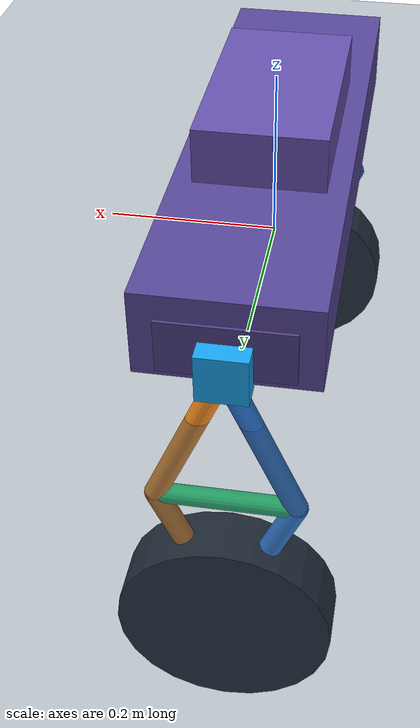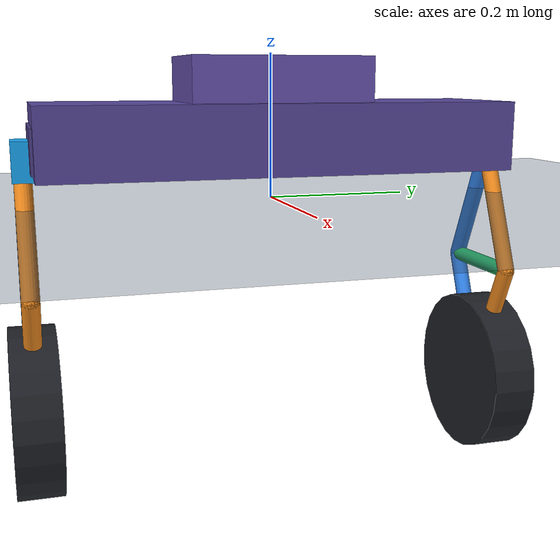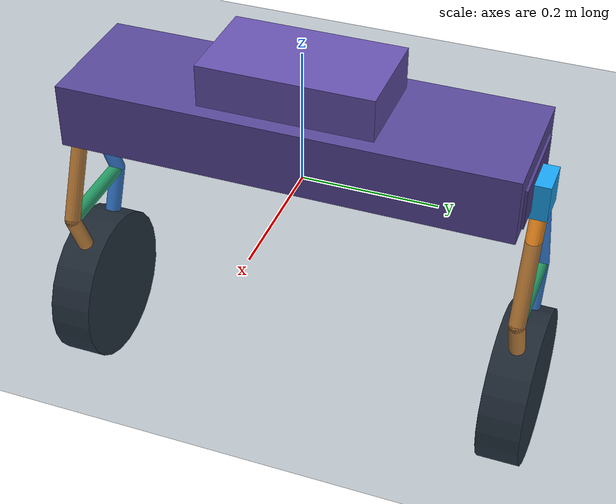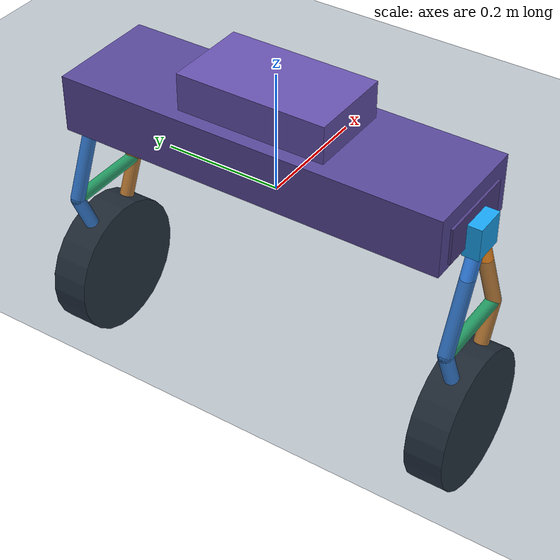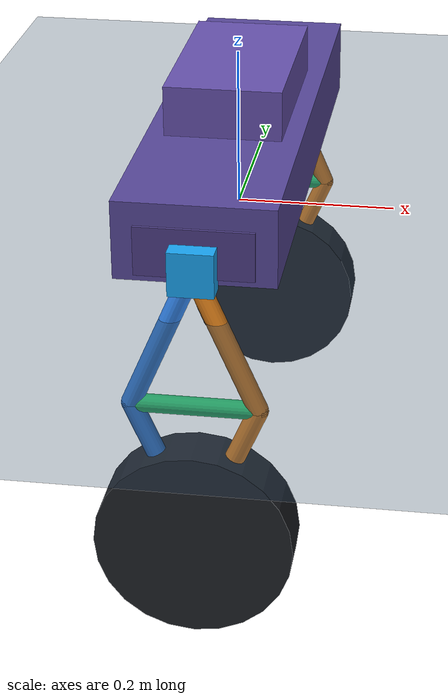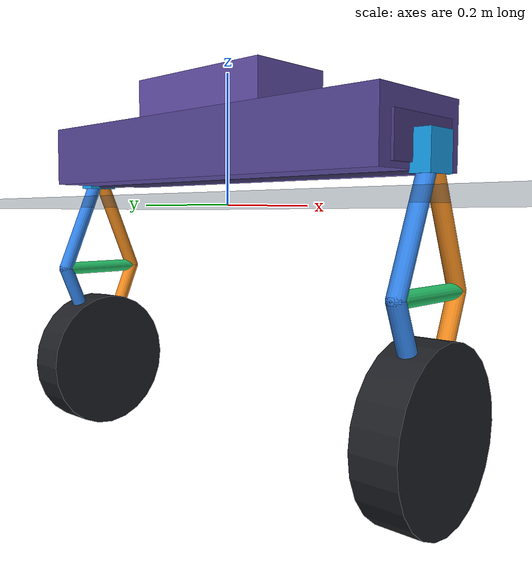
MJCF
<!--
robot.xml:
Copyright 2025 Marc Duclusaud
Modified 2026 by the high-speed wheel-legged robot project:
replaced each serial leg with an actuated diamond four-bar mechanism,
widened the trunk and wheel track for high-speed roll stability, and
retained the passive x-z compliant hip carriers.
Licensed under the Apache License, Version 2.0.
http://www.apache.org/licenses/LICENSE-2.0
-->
<!-- Generated by scripts/generate_high_speed_track.py.
Unitree AddPerlinHeighField demo: size=[2.0, 1.5], 128 px image upsampled 3x. -->
<mujoco model="upkie_unitree_perlin_patch">
  <include file="robot.xml"/>
  <visual>
    <headlight diffuse="0.18 0.18 0.18" ambient="0.10 0.10 0.10"/>
    <rgba haze="0.15 0.25 0.35 1"/>
    <quality shadowsize="4096"/>
    <global offwidth="960" offheight="540" azimuth="145" elevation="-38"/>
  </visual>
  <asset>
    <hfield name="unitree_perlin" file="heightfield.png"
            size="1.000 0.750 0.200000 0.20"/>
    <texture type="skybox" builtin="gradient" rgb1="0.30 0.50 0.70"
             rgb2="0.00 0.00 0.00" width="512" height="3072"/>
    <texture name="grid" type="2d" builtin="checker" mark="edge"
             rgb1="0.20 0.30 0.40" rgb2="0.10 0.20 0.30"
             markrgb="0.80 0.80 0.80" width="512" height="512"/>
    <material name="grid" texture="grid" texrepeat="1 1" texuniform="true"
              reflectance="0.05"/>
    <material name="track" rgba="0.76 0.76 0.74 1" reflectance="0"
              specular="0.18" shininess="0.06"/>
  </asset>
  <worldbody>
    <light pos="1.2 1.0 4.5" dir="-0.25 0.20 -0.95" directional="true"
           diffuse="0.95 0.94 0.90" specular="0.20 0.18 0.16"
           castshadow="true"/>
    <geom name="floor" type="plane" size="0 0 0.05" pos="0 0 0"
          material="grid" friction="1.1 0.02 0.002" condim="3"/>
    <geom name="terrain" type="hfield" hfield="unitree_perlin"
          pos="0.000 0.000 0" material="track" group="3"
          friction="1.1 0.02 0.002" condim="3"/>
  </worldbody>
</mujoco>

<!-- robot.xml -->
<mujoco model="upkie_high_speed_wide_four_bar">
  <compiler angle="radian" autolimits="true"/>
  <option timestep="0.001" integrator="implicitfast" iterations="60"
          ls_iterations="20" noslip_iterations="4"/>

  <default>
    <joint armature="0.005" damping="0.15"/>
    <geom friction="0.8 0.01 0.001" solref="0.004 1"/>
    <default class="link">
      <geom type="capsule" size="0.012" contype="0" conaffinity="0"
            rgba="0.82 0.84 0.88 1"/>
    </default>
    <default class="wheel">
      <geom type="cylinder" size="0.120 0.032" friction="1.1 0.02 0.001"
            rgba="0.12 0.13 0.15 1"/>
    </default>
  </default>

  <worldbody>
    <body name="trunk" pos="0 0 0">
      <freejoint name="trunk_freejoint"/>
      <inertial pos="0.00014 0.00000 0.07200" mass="2.90"
                fullinertia="0.055 0.016 0.052 0 0 0"/>
      <geom name="trunk_collision" type="box" pos="0 0 0.086"
            size="0.095 0.328 0.048" rgba="0.34 0.28 0.60 1"/>
      <geom name="trunk_pod" type="box" pos="0 0 0.148"
            size="0.072 0.126 0.048" rgba="0.40 0.32 0.68 1"
            contype="0" conaffinity="0"/>
      <geom name="left_sponson" type="box" pos="0 0.278 0.076"
            size="0.070 0.054 0.030" rgba="0.30 0.24 0.52 1"
            contype="0" conaffinity="0"/>
      <geom name="right_sponson" type="box" pos="0 -0.278 0.076"
            size="0.070 0.054 0.030" rgba="0.30 0.24 0.52 1"
            contype="0" conaffinity="0"/>
      <geom name="axle_beam" type="capsule" fromto="0 0.336 0.050 0 -0.336 0.050"
            size="0.016" rgba="0.22 0.20 0.38 1"
            contype="0" conaffinity="0"/>
      <site name="imu" pos="-0.04095 0.04000 0.155" size="0.006"/>

      <!-- Left x-z compliant carrier. -->
      <body name="left_hip_carrier" pos="0 0.3411 0.0602">
        <joint name="left_hip_slide_x" type="slide" axis="1 0 0"
               range="-0.020 0.020" stiffness="3000" damping="100"
               springref="0" armature="0.02"/>
        <joint name="left_hip_slide_z" type="slide" axis="0 0 1"
               range="-0.025 0.025" stiffness="7000" damping="180"
               springref="0" armature="0.02"/>
        <inertial pos="0 0 0" mass="0.08" diaginertia="0.00008 0.00008 0.00008"/>
        <geom type="box" size="0.027 0.014 0.027" density="0"
              contype="0" conaffinity="0" rgba="0.10 0.65 0.95 1"/>
        <site name="left_hip_origin" size="0.008" rgba="0.10 0.65 0.95 1"/>

        <body name="left_front_upper" pos="0 0 0">
          <joint name="left_hip" type="hinge" axis="0 1 0" range="-0.65 0.65"/>
          <geom class="link" fromto="0 0 0 0.075 0 -0.174" mass="0.24"
                rgba="0.95 0.55 0.12 1"/>
          <site name="left_front_knee" pos="0.075 0 -0.174" size="0.009"
                rgba="0.95 0.55 0.12 1"/>

          <body name="left_front_lower" pos="0.075 0 -0.174">
            <joint name="left_front_knee_hinge" type="hinge" axis="0 1 0"/>
            <geom class="link" fromto="0 0 0 -0.075 0 -0.174" mass="0.21"
                  rgba="0.95 0.55 0.12 1"/>

            <!-- Telescopic crossbar points from front knee toward rear knee. -->
            <body name="left_strut_outer" quat="0 0 0 1">
              <joint name="left_strut_angle" type="hinge" axis="0 1 0"/>
              <geom name="left_strut_sleeve" type="capsule"
                    fromto="0 0 0 0.140 0 0" size="0.011"
                    mass="0.15" contype="0" conaffinity="0"
                    rgba="0.15 0.78 0.42 1"/>
              <site name="left_strut_sleeve_end" pos="0.140 0 0" size="0.004"/>
              <body name="left_strut_middle" pos="0.050 0 0">
                <joint name="left_strut_extension" type="slide" axis="1 0 0"
                       range="-0.020 0.094" stiffness="1600" damping="100"
                       springref="0" armature="0.03"/>
                <geom name="left_strut_middle_sleeve" type="capsule"
                      fromto="-0.040 0 0 0.100 0 0" size="0.008"
                      mass="0.07" contype="0" conaffinity="0"
                      rgba="0.85 0.95 0.88 1"/>
                <site name="left_strut_middle_rear" pos="-0.040 0 0" size="0.004"/>
                <site name="left_strut_middle_end" pos="0.100 0 0" size="0.004"/>
                <body name="left_strut_inner" pos="0.050 0 0">
                  <joint name="left_strut_extension_stage2" type="slide" axis="1 0 0"
                         range="-0.020 0.094" stiffness="1600" damping="100"
                         springref="0" armature="0.03"/>
                  <geom name="left_strut_rod" type="capsule"
                        fromto="-0.070 0 0 0.050 0 0" size="0.0055"
                        mass="0.03" contype="0" conaffinity="0"
                        rgba="0.98 0.72 0.20 1"/>
                  <site name="left_strut_rod_rear" pos="-0.070 0 0" size="0.004"/>
                  <site name="left_strut_endpoint" pos="0.050 0 0" size="0.008"
                        rgba="0.15 0.78 0.42 1"/>
                </body>
              </body>
            </body>

            <body name="left_wheel_node" pos="-0.075 0 -0.174">
              <joint name="left_front_bottom_hinge" type="hinge" axis="0 1 0"/>
              <inertial pos="0 0 0" mass="0.02" diaginertia="0.00002 0.00002 0.00002"/>
              <site name="left_bottom_closure" size="0.008"/>
              <body name="left_wheel">
                <joint name="left_wheel_joint" type="hinge" axis="0 1 0"
                       damping="0.005"/>
                <geom class="wheel" quat="0.7071068 0.7071068 0 0" mass="0.2385"/>
              </body>
            </body>
          </body>
        </body>

        <body name="left_rear_upper" pos="0 0 0">
          <joint name="left_rear_hip_hinge" type="hinge" axis="0 1 0"/>
          <geom class="link" fromto="0 0 0 -0.075 0 -0.174" mass="0.24"
                rgba="0.20 0.52 0.92 1"/>
          <site name="left_rear_knee" pos="-0.075 0 -0.174" size="0.009"
                rgba="0.20 0.52 0.92 1"/>
          <body name="left_rear_lower" pos="-0.075 0 -0.174">
            <joint name="left_rear_knee_hinge" type="hinge" axis="0 1 0"/>
            <geom class="link" fromto="0 0 0 0.075 0 -0.174" mass="0.21"
                  rgba="0.20 0.52 0.92 1"/>
            <site name="left_rear_bottom_endpoint" pos="0.075 0 -0.174" size="0.008"/>
          </body>
        </body>
      </body>

      <!-- Right x-z compliant carrier. -->
      <body name="right_hip_carrier" pos="0 -0.3411 0.0602">
        <joint name="right_hip_slide_x" type="slide" axis="1 0 0"
               range="-0.020 0.020" stiffness="3000" damping="100"
               springref="0" armature="0.02"/>
        <joint name="right_hip_slide_z" type="slide" axis="0 0 1"
               range="-0.025 0.025" stiffness="7000" damping="180"
               springref="0" armature="0.02"/>
        <inertial pos="0 0 0" mass="0.08" diaginertia="0.00008 0.00008 0.00008"/>
        <geom type="box" size="0.027 0.014 0.027" density="0"
              contype="0" conaffinity="0" rgba="0.10 0.65 0.95 1"/>
        <site name="right_hip_origin" size="0.008" rgba="0.10 0.65 0.95 1"/>

        <body name="right_front_upper" pos="0 0 0">
          <joint name="right_hip" type="hinge" axis="0 1 0" range="-0.65 0.65"/>
          <geom class="link" fromto="0 0 0 0.075 0 -0.174" mass="0.24"
                rgba="0.95 0.55 0.12 1"/>
          <site name="right_front_knee" pos="0.075 0 -0.174" size="0.009"
                rgba="0.95 0.55 0.12 1"/>

          <body name="right_front_lower" pos="0.075 0 -0.174">
            <joint name="right_front_knee_hinge" type="hinge" axis="0 1 0"/>
            <geom class="link" fromto="0 0 0 -0.075 0 -0.174" mass="0.21"
                  rgba="0.95 0.55 0.12 1"/>

            <body name="right_strut_outer" quat="0 0 0 1">
              <joint name="right_strut_angle" type="hinge" axis="0 1 0"/>
              <geom name="right_strut_sleeve" type="capsule"
                    fromto="0 0 0 0.140 0 0" size="0.011"
                    mass="0.15" contype="0" conaffinity="0"
                    rgba="0.15 0.78 0.42 1"/>
              <site name="right_strut_sleeve_end" pos="0.140 0 0" size="0.004"/>
              <body name="right_strut_middle" pos="0.050 0 0">
                <joint name="right_strut_extension" type="slide" axis="1 0 0"
                       range="-0.020 0.094" stiffness="1600" damping="100"
                       springref="0" armature="0.03"/>
                <geom name="right_strut_middle_sleeve" type="capsule"
                      fromto="-0.040 0 0 0.100 0 0" size="0.008"
                      mass="0.07" contype="0" conaffinity="0"
                      rgba="0.85 0.95 0.88 1"/>
                <site name="right_strut_middle_rear" pos="-0.040 0 0" size="0.004"/>
                <site name="right_strut_middle_end" pos="0.100 0 0" size="0.004"/>
                <body name="right_strut_inner" pos="0.050 0 0">
                  <joint name="right_strut_extension_stage2" type="slide" axis="1 0 0"
                         range="-0.020 0.094" stiffness="1600" damping="100"
                         springref="0" armature="0.03"/>
                  <geom name="right_strut_rod" type="capsule"
                        fromto="-0.070 0 0 0.050 0 0" size="0.0055"
                        mass="0.03" contype="0" conaffinity="0"
                        rgba="0.98 0.72 0.20 1"/>
                  <site name="right_strut_rod_rear" pos="-0.070 0 0" size="0.004"/>
                  <site name="right_strut_endpoint" pos="0.050 0 0" size="0.008"
                        rgba="0.15 0.78 0.42 1"/>
                </body>
              </body>
            </body>

            <body name="right_wheel_node" pos="-0.075 0 -0.174">
              <joint name="right_front_bottom_hinge" type="hinge" axis="0 1 0"/>
              <inertial pos="0 0 0" mass="0.02" diaginertia="0.00002 0.00002 0.00002"/>
              <site name="right_bottom_closure" size="0.008"/>
              <body name="right_wheel">
                <joint name="right_wheel_joint" type="hinge" axis="0 1 0"
                       damping="0.005"/>
                <geom class="wheel" quat="0.7071068 0.7071068 0 0" mass="0.2385"/>
              </body>
            </body>
          </body>
        </body>

        <body name="right_rear_upper" pos="0 0 0">
          <joint name="right_rear_hip_hinge" type="hinge" axis="0 1 0"/>
          <geom class="link" fromto="0 0 0 -0.075 0 -0.174" mass="0.24"
                rgba="0.20 0.52 0.92 1"/>
          <site name="right_rear_knee" pos="-0.075 0 -0.174" size="0.009"
                rgba="0.20 0.52 0.92 1"/>
          <body name="right_rear_lower" pos="-0.075 0 -0.174">
            <joint name="right_rear_knee_hinge" type="hinge" axis="0 1 0"/>
            <geom class="link" fromto="0 0 0 0.075 0 -0.174" mass="0.21"
                  rgba="0.20 0.52 0.92 1"/>
            <site name="right_rear_bottom_endpoint" pos="0.075 0 -0.174" size="0.008"/>
          </body>
        </body>
      </body>
    </body>
  </worldbody>

  <equality>
    <connect name="left_four_bar_closure"
             site1="left_rear_bottom_endpoint" site2="left_bottom_closure"
             solref="0.002 1" solimp="0.95 0.99 0.001"/>
    <connect name="left_strut_closure"
             site1="left_strut_endpoint" site2="left_rear_knee"
             solref="0.002 1" solimp="0.95 0.99 0.001"/>
    <joint name="left_strut_stage_sync"
           joint1="left_strut_extension" joint2="left_strut_extension_stage2"
           polycoef="0 1 0 0 0" solref="0.0002 1"
           solimp="0.999 0.9999 0.0001"/>
    <connect name="right_four_bar_closure"
             site1="right_rear_bottom_endpoint" site2="right_bottom_closure"
             solref="0.002 1" solimp="0.95 0.99 0.001"/>
    <connect name="right_strut_closure"
             site1="right_strut_endpoint" site2="right_rear_knee"
             solref="0.002 1" solimp="0.95 0.99 0.001"/>
    <joint name="right_strut_stage_sync"
           joint1="right_strut_extension" joint2="right_strut_extension_stage2"
           polycoef="0 1 0 0 0" solref="0.0002 1"
           solimp="0.999 0.9999 0.0001"/>
  </equality>

  <actuator>
    <position name="left_hip" joint="left_hip" kp="30" kv="1.5"
              ctrlrange="-0.65 0.65" forcerange="-16 16"/>
    <position name="left_strut" joint="left_strut_extension" kp="8000" kv="100"
              ctrlrange="-0.040 0.165" forcerange="-700 700"/>
    <motor name="left_wheel" joint="left_wheel_joint"
           ctrlrange="-6 6" forcerange="-6 6"/>
    <position name="right_hip" joint="right_hip" kp="30" kv="1.5"
              ctrlrange="-0.65 0.65" forcerange="-16 16"/>
    <position name="right_strut" joint="right_strut_extension" kp="8000" kv="100"
              ctrlrange="-0.040 0.165" forcerange="-700 700"/>
    <motor name="right_wheel" joint="right_wheel_joint"
           ctrlrange="-6 6" forcerange="-6 6"/>
  </actuator>

  <sensor>
    <framequat name="imu_quat" objtype="site" objname="imu"/>
    <gyro name="imu_gyro" site="imu"/>
    <velocimeter name="imu_velocity" site="imu"/>
    <jointpos name="left_strut_pos" joint="left_strut_extension"/>
    <jointvel name="left_strut_vel" joint="left_strut_extension"/>
    <jointpos name="right_strut_pos" joint="right_strut_extension"/>
    <jointvel name="right_strut_vel" joint="right_strut_extension"/>
    <jointpos name="left_hip_slide_x_pos" joint="left_hip_slide_x"/>
    <jointpos name="left_hip_slide_z_pos" joint="left_hip_slide_z"/>
    <jointpos name="right_hip_slide_x_pos" joint="right_hip_slide_x"/>
    <jointpos name="right_hip_slide_z_pos" joint="right_hip_slide_z"/>
  </sensor>
</mujoco>
